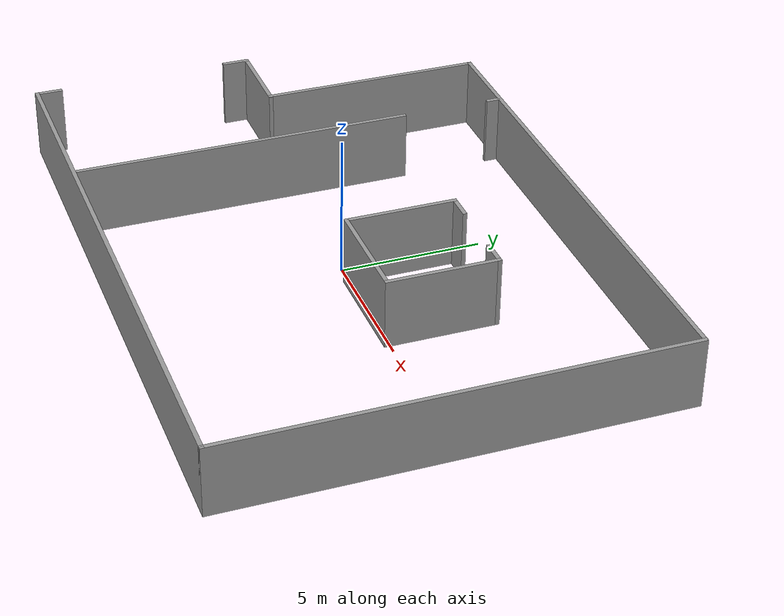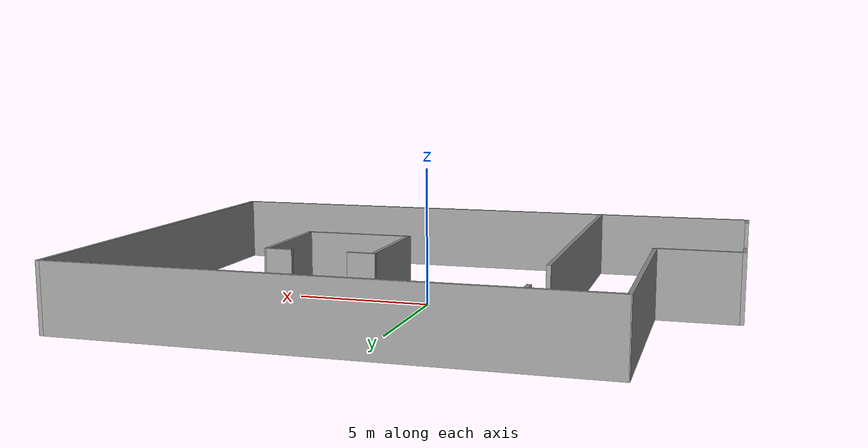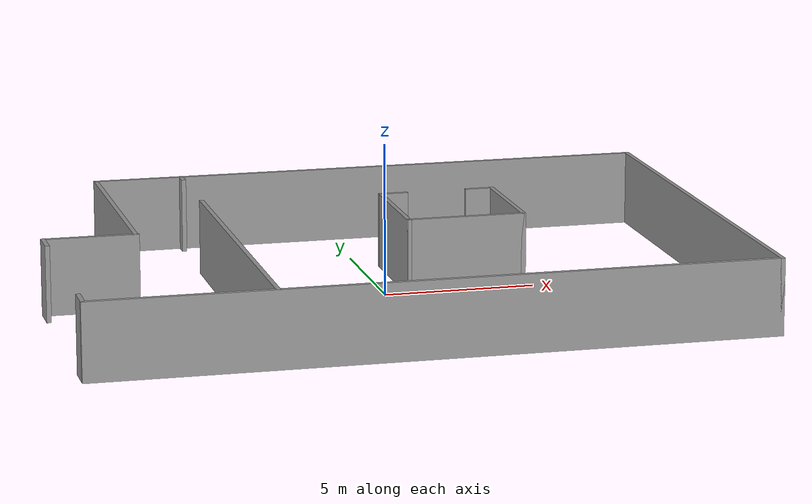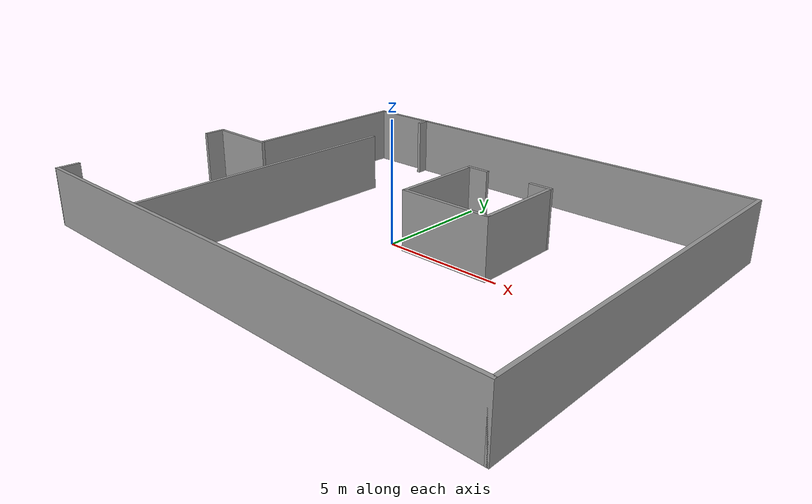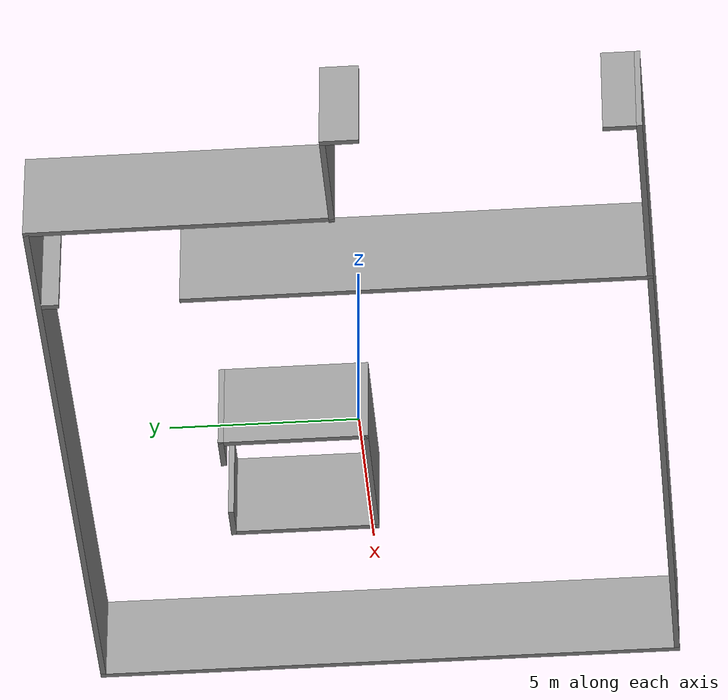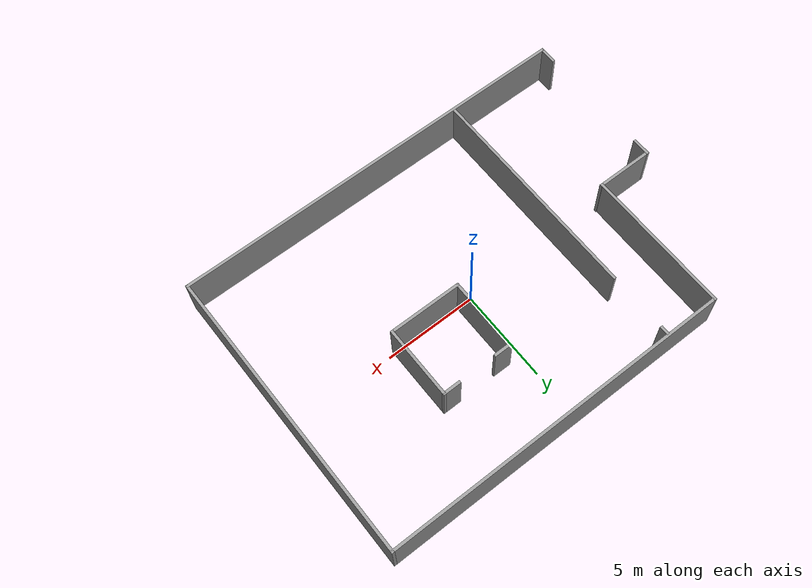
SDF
<?xml version='1.0'?>
<sdf version='1.7'>
  <model name='wall_costmapEx'>
    <pose>-0.200164 -0.009461 0 0 -0 0</pose>
    <link name='Wall_0'>
      <collision name='Wall_0_Collision'>
        <geometry>
          <box>
            <size>22 0.15 2.5</size>
          </box>
        </geometry>
        <pose>0 0 1.25 0 -0 0</pose>
      </collision>
      <visual name='Wall_0_Visual'>
        <pose>0 0 1.25 0 -0 0</pose>
        <geometry>
          <box>
            <size>22 0.15 2.5</size>
          </box>
        </geometry>
        <material>
          <script>
            <uri>file://media/materials/scripts/gazebo.material</uri>
            <name>Gazebo/Grey</name>
          </script>
          <ambient>1 1 1 1</ambient>
        </material>
        <meta>
          <layer>0</layer>
        </meta>
      </visual>
      <pose>0.000462 -7.925 0 0 -0 0</pose>
    </link>
    <link name='Wall_1'>
      <collision name='Wall_1_Collision'>
        <geometry>
          <box>
            <size>16 0.15 2.5</size>
          </box>
        </geometry>
        <pose>0 0 1.25 0 -0 0</pose>
      </collision>
      <visual name='Wall_1_Visual'>
        <pose>0 0 1.25 0 -0 0</pose>
        <geometry>
          <box>
            <size>16 0.15 2.5</size>
          </box>
        </geometry>
        <material>
          <script>
            <uri>file://media/materials/scripts/gazebo.material</uri>
            <name>Gazebo/Grey</name>
          </script>
          <ambient>1 1 1 1</ambient>
        </material>
        <meta>
          <layer>0</layer>
        </meta>
      </visual>
      <pose>10.9255 0 0 0 -0 1.5708</pose>
    </link>
    <link name='Wall_11'>
      <collision name='Wall_11_Collision'>
        <geometry>
          <box>
            <size>1 0.15 2.5</size>
          </box>
        </geometry>
        <pose>0 0 1.25 0 -0 0</pose>
      </collision>
      <visual name='Wall_11_Visual'>
        <pose>0 0 1.25 0 -0 0</pose>
        <geometry>
          <box>
            <size>1 0.15 2.5</size>
          </box>
        </geometry>
        <material>
          <script>
            <uri>file://media/materials/scripts/gazebo.material</uri>
            <name>Gazebo/Grey</name>
          </script>
          <ambient>1 1 1 1</ambient>
        </material>
        <meta>
          <layer>0</layer>
        </meta>
      </visual>
      <pose>1.39348 3.74312 0 0 -0 3.14159</pose>
    </link>
    <link name='Wall_12'>
      <collision name='Wall_12_Collision'>
        <geometry>
          <box>
            <size>4 0.15 2.5</size>
          </box>
        </geometry>
        <pose>0 0 1.25 0 -0 0</pose>
      </collision>
      <visual name='Wall_12_Visual'>
        <pose>0 0 1.25 0 -0 0</pose>
        <geometry>
          <box>
            <size>4 0.15 2.5</size>
          </box>
        </geometry>
        <material>
          <script>
            <uri>file://media/materials/scripts/gazebo.material</uri>
            <name>Gazebo/Grey</name>
          </script>
          <ambient>1 1 1 1</ambient>
        </material>
        <meta>
          <layer>0</layer>
        </meta>
      </visual>
      <pose>0.968482 1.81812 0 0 -0 -1.5708</pose>
    </link>
    <link name='Wall_13'>
      <collision name='Wall_13_Collision'>
        <geometry>
          <box>
            <size>4 0.15 2.5</size>
          </box>
        </geometry>
        <pose>0 0 1.25 0 -0 0</pose>
      </collision>
      <visual name='Wall_13_Visual'>
        <pose>0 0 1.25 0 -0 0</pose>
        <geometry>
          <box>
            <size>4 0.15 2.5</size>
          </box>
        </geometry>
        <material>
          <script>
            <uri>file://media/materials/scripts/gazebo.material</uri>
            <name>Gazebo/Grey</name>
          </script>
          <ambient>1 1 1 1</ambient>
        </material>
        <meta>
          <layer>0</layer>
        </meta>
      </visual>
      <pose>2.89348 -0.106881 0 0 -0 0</pose>
    </link>
    <link name='Wall_14'>
      <collision name='Wall_14_Collision'>
        <geometry>
          <box>
            <size>4 0.15 2.5</size>
          </box>
        </geometry>
        <pose>0 0 1.25 0 -0 0</pose>
      </collision>
      <visual name='Wall_14_Visual'>
        <pose>0 0 1.25 0 -0 0</pose>
        <geometry>
          <box>
            <size>4 0.15 2.5</size>
          </box>
        </geometry>
        <material>
          <script>
            <uri>file://media/materials/scripts/gazebo.material</uri>
            <name>Gazebo/Grey</name>
          </script>
          <ambient>1 1 1 1</ambient>
        </material>
        <meta>
          <layer>0</layer>
        </meta>
      </visual>
      <pose>4.81848 1.81812 0 0 -0 1.5708</pose>
    </link>
    <link name='Wall_15'>
      <collision name='Wall_15_Collision'>
        <geometry>
          <box>
            <size>1 0.15 2.5</size>
          </box>
        </geometry>
        <pose>0 0 1.25 0 -0 0</pose>
      </collision>
      <visual name='Wall_15_Visual'>
        <pose>0 0 1.25 0 -0 0</pose>
        <geometry>
          <box>
            <size>1 0.15 2.5</size>
          </box>
        </geometry>
        <material>
          <script>
            <uri>file://media/materials/scripts/gazebo.material</uri>
            <name>Gazebo/Grey</name>
          </script>
          <ambient>1 1 1 1</ambient>
        </material>
        <meta>
          <layer>0</layer>
        </meta>
      </visual>
      <pose>4.39348 3.74312 0 0 -0 3.14159</pose>
    </link>
    <link name='Wall_19'>
      <collision name='Wall_19_Collision'>
        <geometry>
          <box>
            <size>0.5 0.15 2.5</size>
          </box>
        </geometry>
        <pose>0 0 1.25 0 -0 0</pose>
      </collision>
      <visual name='Wall_19_Visual'>
        <pose>0 0 1.25 0 -0 0</pose>
        <geometry>
          <box>
            <size>0.5 0.15 2.5</size>
          </box>
        </geometry>
        <material>
          <script>
            <uri>file://media/materials/scripts/gazebo.material</uri>
            <name>Gazebo/Grey</name>
          </script>
          <ambient>1 1 1 1</ambient>
        </material>
        <meta>
          <layer>0</layer>
        </meta>
      </visual>
      <pose>-5.0382 7.64339 0 0 -0 -1.5708</pose>
    </link>
    <link name='Wall_2'>
      <collision name='Wall_2_Collision'>
        <geometry>
          <box>
            <size>19 0.15 2.5</size>
          </box>
        </geometry>
        <pose>0 0 1.25 0 -0 0</pose>
      </collision>
      <visual name='Wall_2_Visual'>
        <pose>0 0 1.25 0 -0 0</pose>
        <geometry>
          <box>
            <size>19 0.15 2.5</size>
          </box>
        </geometry>
        <material>
          <script>
            <uri>file://media/materials/scripts/gazebo.material</uri>
            <name>Gazebo/Grey</name>
          </script>
          <ambient>1 1 1 1</ambient>
        </material>
        <meta>
          <layer>0</layer>
        </meta>
      </visual>
      <pose>1.50046 7.925 0 0 -0 3.14159</pose>
    </link>
    <link name='Wall_22'>
      <collision name='Wall_22_Collision'>
        <geometry>
          <box>
            <size>12.25 0.15 2.5</size>
          </box>
        </geometry>
        <pose>0 0 1.25 0 -0 0</pose>
      </collision>
      <visual name='Wall_22_Visual'>
        <pose>0 0 1.25 0 -0 0</pose>
        <geometry>
          <box>
            <size>12.25 0.15 2.5</size>
          </box>
        </geometry>
        <material>
          <script>
            <uri>file://media/materials/scripts/gazebo.material</uri>
            <name>Gazebo/Grey</name>
          </script>
          <ambient>1 1 1 1</ambient>
        </material>
        <meta>
          <layer>0</layer>
        </meta>
      </visual>
      <pose>-5.02745 -1.86968 0 0 -0 1.5708</pose>
    </link>
    <link name='Wall_3'>
      <collision name='Wall_3_Collision'>
        <geometry>
          <box>
            <size>8 0.15 2.5</size>
          </box>
        </geometry>
        <pose>0 0 1.25 0 -0 0</pose>
      </collision>
      <visual name='Wall_3_Visual'>
        <pose>0 0 1.25 0 -0 0</pose>
        <geometry>
          <box>
            <size>8 0.15 2.5</size>
          </box>
        </geometry>
        <material>
          <script>
            <uri>file://media/materials/scripts/gazebo.material</uri>
            <name>Gazebo/Grey</name>
          </script>
          <ambient>1 1 1 1</ambient>
        </material>
        <meta>
          <layer>0</layer>
        </meta>
      </visual>
      <pose>-7.95952 4 0 0 -0 -1.5708</pose>
    </link>
    <link name='Wall_4'>
      <collision name='Wall_4_Collision'>
        <geometry>
          <box>
            <size>3 0.15 2.5</size>
          </box>
        </geometry>
        <pose>0 0 1.25 0 -0 0</pose>
      </collision>
      <visual name='Wall_4_Visual'>
        <pose>0 0 1.25 0 -0 0</pose>
        <geometry>
          <box>
            <size>3 0.15 2.5</size>
          </box>
        </geometry>
        <material>
          <script>
            <uri>file://media/materials/scripts/gazebo.material</uri>
            <name>Gazebo/Grey</name>
          </script>
          <ambient>1 1 1 1</ambient>
        </material>
        <meta>
          <layer>0</layer>
        </meta>
      </visual>
      <pose>-9.34954 0.075 0 0 -0 3.14159</pose>
    </link>
    <link name='Wall_6'>
      <collision name='Wall_6_Collision'>
        <geometry>
          <box>
            <size>1 0.15 2.5</size>
          </box>
        </geometry>
        <pose>0 0 1.25 0 -0 0</pose>
      </collision>
      <visual name='Wall_6_Visual'>
        <pose>0 0 1.25 0 -0 0</pose>
        <geometry>
          <box>
            <size>1 0.15 2.5</size>
          </box>
        </geometry>
        <material>
          <script>
            <uri>file://media/materials/scripts/gazebo.material</uri>
            <name>Gazebo/Grey</name>
          </script>
          <ambient>1 1 1 1</ambient>
        </material>
        <meta>
          <layer>0</layer>
        </meta>
      </visual>
      <pose>-10.9245 -7.5 0 0 -0 1.5708</pose>
    </link>
    <link name='Wall_9'>
      <collision name='Wall_9_Collision'>
        <geometry>
          <box>
            <size>1 0.15 2.5</size>
          </box>
        </geometry>
        <pose>0 0 1.25 0 -0 0</pose>
      </collision>
      <visual name='Wall_9_Visual'>
        <pose>0 0 1.25 0 -0 0</pose>
        <geometry>
          <box>
            <size>1 0.15 2.5</size>
          </box>
        </geometry>
        <material>
          <script>
            <uri>file://media/materials/scripts/gazebo.material</uri>
            <name>Gazebo/Grey</name>
          </script>
          <ambient>1 1 1 1</ambient>
        </material>
        <meta>
          <layer>0</layer>
        </meta>
      </visual>
      <pose>-10.9255 -0.351879 0 0 -0 1.5708</pose>
    </link>
    <static>1</static>
  </model>
</sdf>
